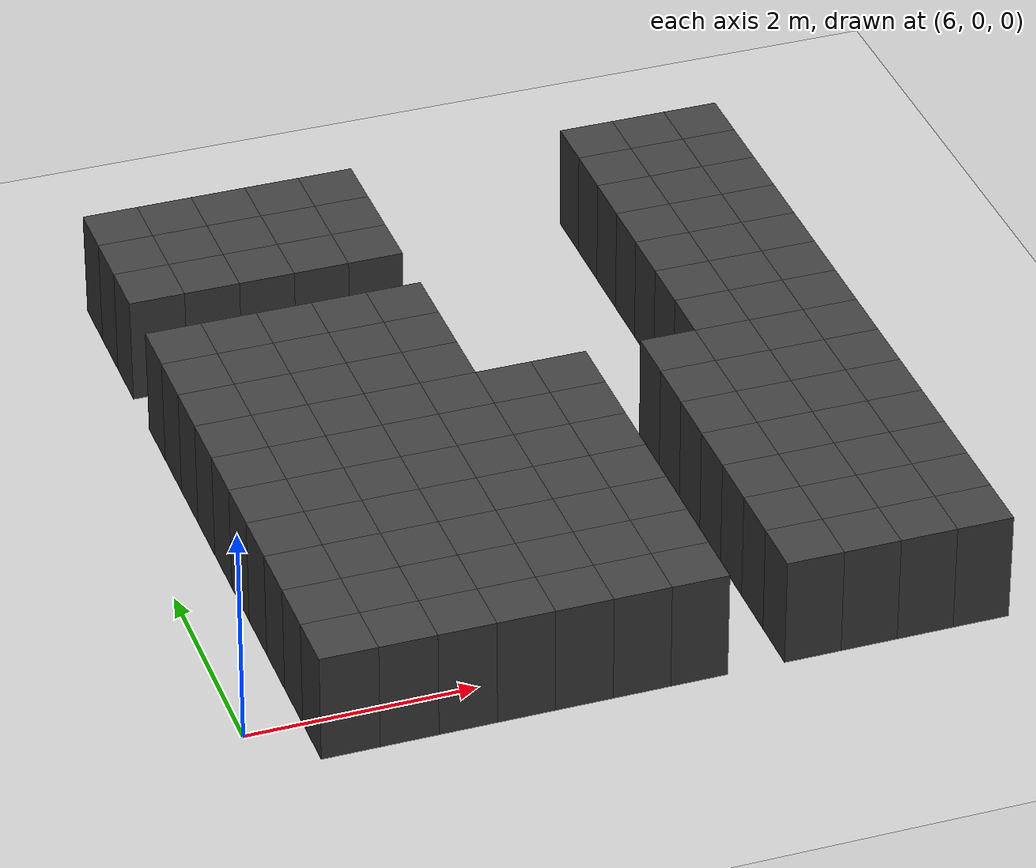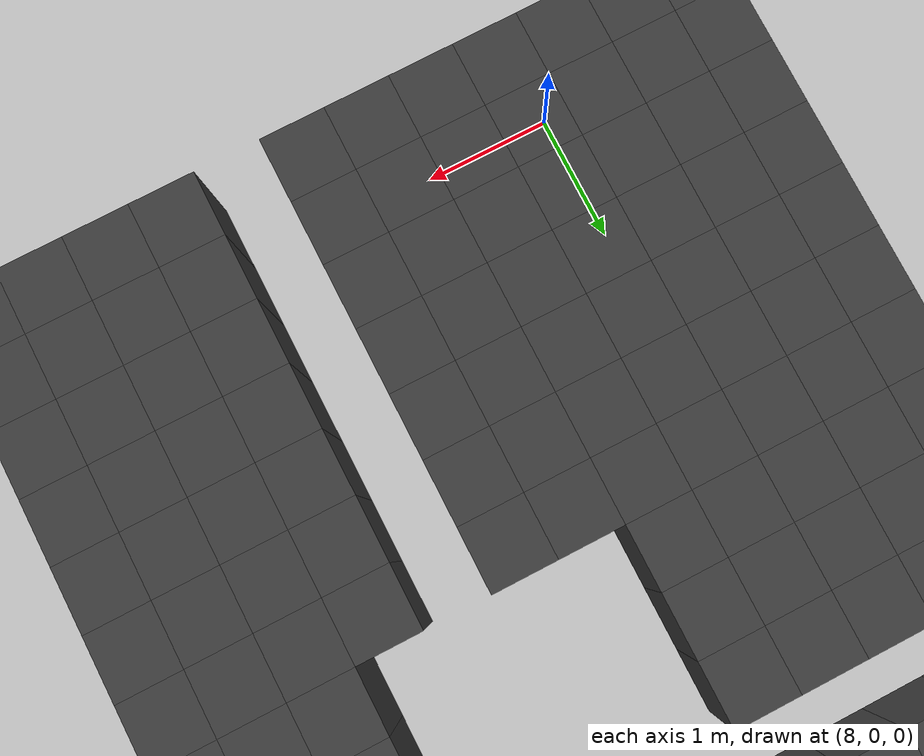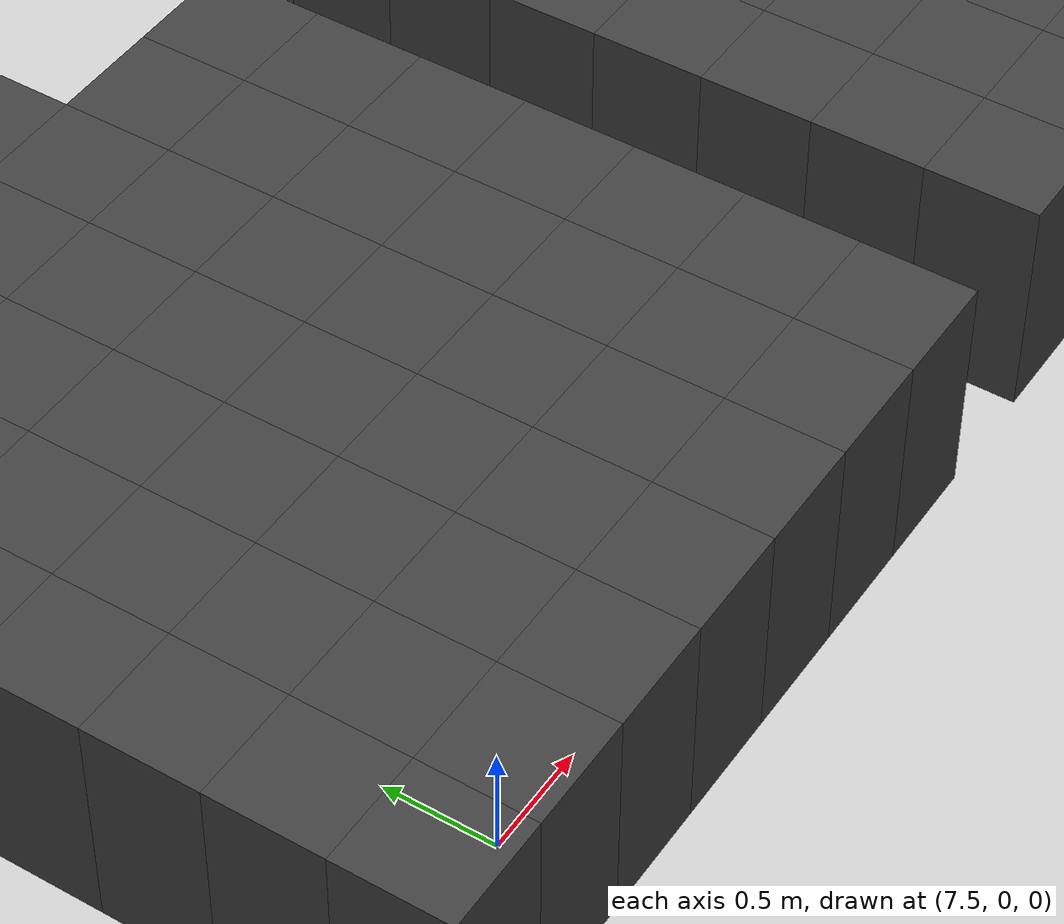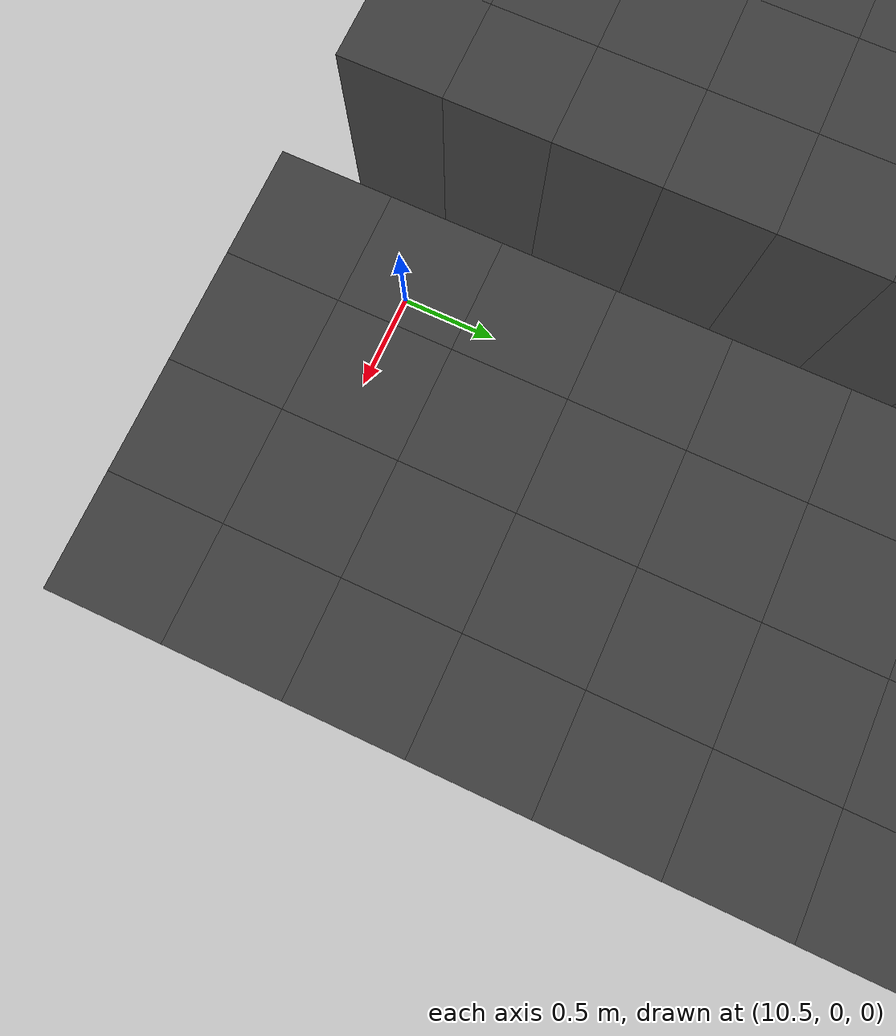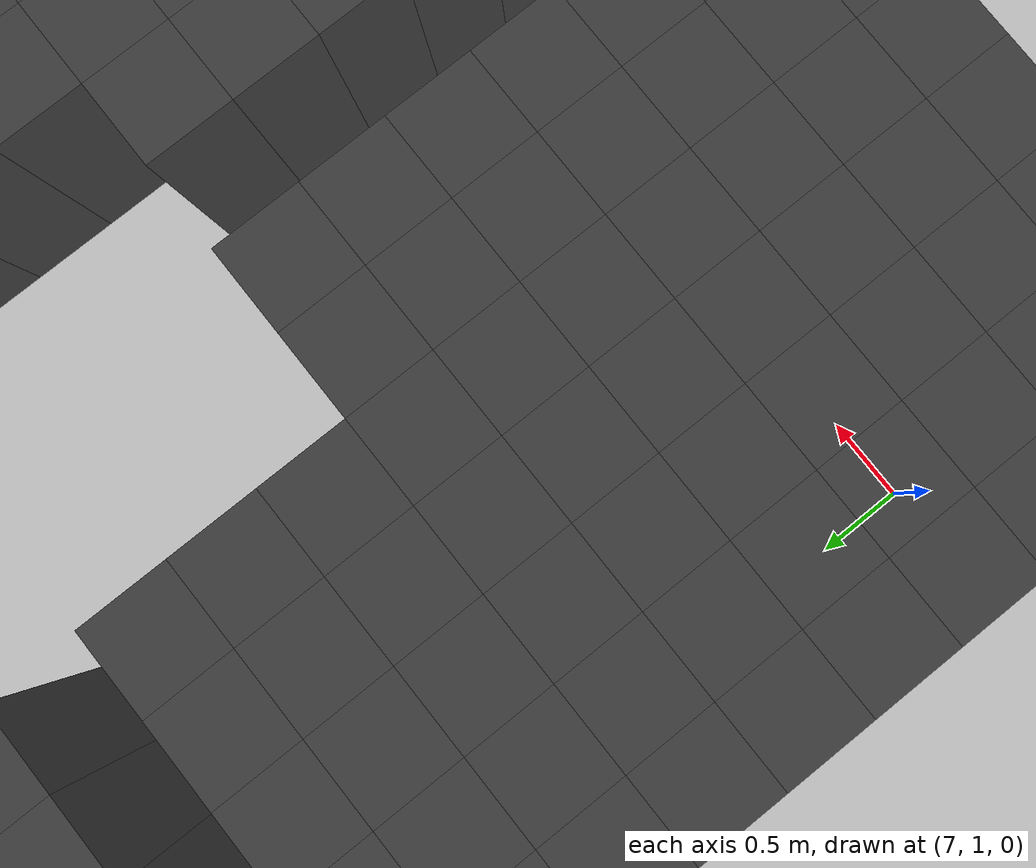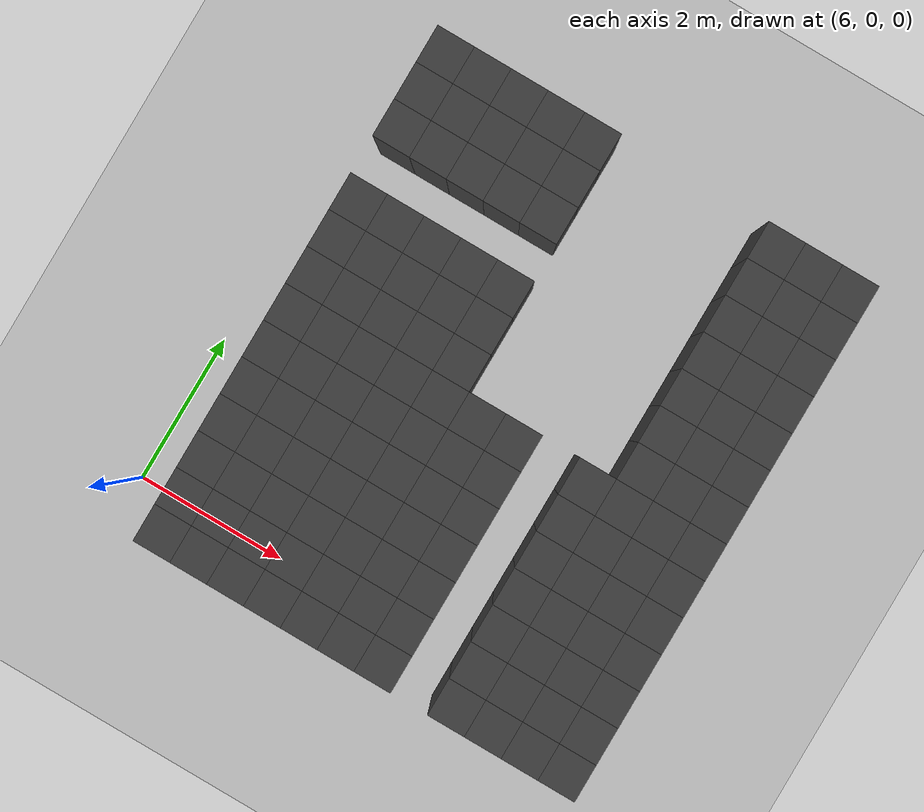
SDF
<sdf version="1.7">
 <world name="map_12356">
  <model name="ground_plane">
   <static>true</static>
   <link name="link">
    <collision name="collision">
     <geometry><plane><normal>0 0 1</normal><size>200 200</size></plane></geometry>
    </collision>
    <visual name="visual">
     <geometry><plane><normal>0 0 1</normal><size>200 200</size></plane></geometry>
     <material><ambient>0.8 0.8 0.8 1</ambient><diffuse>0.8 0.8 0.8 1</diffuse></material>
    </visual>
   </link>
  </model>
  <model name="maze_environment">
   <static>true</static>
   <link name="wall_462">
    <pose>6.750 6.250 0.500 0 0 0</pose>
    <collision name="col"><geometry><box><size>0.5 0.5 1.0</size></box></geometry></collision>
    <visual name="vis">
     <geometry><box><size>0.5 0.5 1.0</size></box></geometry>
     <material><ambient>0.15 0.15 0.15 1</ambient><diffuse>0.25 0.25 0.25 1</diffuse></material>
    </visual>
   </link>
   <link name="wall_463">
    <pose>7.250 6.250 0.500 0 0 0</pose>
    <collision name="col"><geometry><box><size>0.5 0.5 1.0</size></box></geometry></collision>
    <visual name="vis">
     <geometry><box><size>0.5 0.5 1.0</size></box></geometry>
     <material><ambient>0.15 0.15 0.15 1</ambient><diffuse>0.25 0.25 0.25 1</diffuse></material>
    </visual>
   </link>
   <link name="wall_464">
    <pose>7.750 6.250 0.500 0 0 0</pose>
    <collision name="col"><geometry><box><size>0.5 0.5 1.0</size></box></geometry></collision>
    <visual name="vis">
     <geometry><box><size>0.5 0.5 1.0</size></box></geometry>
     <material><ambient>0.15 0.15 0.15 1</ambient><diffuse>0.25 0.25 0.25 1</diffuse></material>
    </visual>
   </link>
   <link name="wall_465">
    <pose>8.250 6.250 0.500 0 0 0</pose>
    <collision name="col"><geometry><box><size>0.5 0.5 1.0</size></box></geometry></collision>
    <visual name="vis">
     <geometry><box><size>0.5 0.5 1.0</size></box></geometry>
     <material><ambient>0.15 0.15 0.15 1</ambient><diffuse>0.25 0.25 0.25 1</diffuse></material>
    </visual>
   </link>
   <link name="wall_466">
    <pose>8.750 6.250 0.500 0 0 0</pose>
    <collision name="col"><geometry><box><size>0.5 0.5 1.0</size></box></geometry></collision>
    <visual name="vis">
     <geometry><box><size>0.5 0.5 1.0</size></box></geometry>
     <material><ambient>0.15 0.15 0.15 1</ambient><diffuse>0.25 0.25 0.25 1</diffuse></material>
    </visual>
   </link>
   <link name="wall_467">
    <pose>11.250 6.250 0.500 0 0 0</pose>
    <collision name="col"><geometry><box><size>0.5 0.5 1.0</size></box></geometry></collision>
    <visual name="vis">
     <geometry><box><size>0.5 0.5 1.0</size></box></geometry>
     <material><ambient>0.15 0.15 0.15 1</ambient><diffuse>0.25 0.25 0.25 1</diffuse></material>
    </visual>
   </link>
   <link name="wall_468">
    <pose>11.750 6.250 0.500 0 0 0</pose>
    <collision name="col"><geometry><box><size>0.5 0.5 1.0</size></box></geometry></collision>
    <visual name="vis">
     <geometry><box><size>0.5 0.5 1.0</size></box></geometry>
     <material><ambient>0.15 0.15 0.15 1</ambient><diffuse>0.25 0.25 0.25 1</diffuse></material>
    </visual>
   </link>
   <link name="wall_469">
    <pose>12.250 6.250 0.500 0 0 0</pose>
    <collision name="col"><geometry><box><size>0.5 0.5 1.0</size></box></geometry></collision>
    <visual name="vis">
     <geometry><box><size>0.5 0.5 1.0</size></box></geometry>
     <material><ambient>0.15 0.15 0.15 1</ambient><diffuse>0.25 0.25 0.25 1</diffuse></material>
    </visual>
   </link>
   <link name="wall_506">
    <pose>6.750 5.750 0.500 0 0 0</pose>
    <collision name="col"><geometry><box><size>0.5 0.5 1.0</size></box></geometry></collision>
    <visual name="vis">
     <geometry><box><size>0.5 0.5 1.0</size></box></geometry>
     <material><ambient>0.15 0.15 0.15 1</ambient><diffuse>0.25 0.25 0.25 1</diffuse></material>
    </visual>
   </link>
   <link name="wall_507">
    <pose>7.250 5.750 0.500 0 0 0</pose>
    <collision name="col"><geometry><box><size>0.5 0.5 1.0</size></box></geometry></collision>
    <visual name="vis">
     <geometry><box><size>0.5 0.5 1.0</size></box></geometry>
     <material><ambient>0.15 0.15 0.15 1</ambient><diffuse>0.25 0.25 0.25 1</diffuse></material>
    </visual>
   </link>
   <link name="wall_508">
    <pose>7.750 5.750 0.500 0 0 0</pose>
    <collision name="col"><geometry><box><size>0.5 0.5 1.0</size></box></geometry></collision>
    <visual name="vis">
     <geometry><box><size>0.5 0.5 1.0</size></box></geometry>
     <material><ambient>0.15 0.15 0.15 1</ambient><diffuse>0.25 0.25 0.25 1</diffuse></material>
    </visual>
   </link>
   <link name="wall_509">
    <pose>8.250 5.750 0.500 0 0 0</pose>
    <collision name="col"><geometry><box><size>0.5 0.5 1.0</size></box></geometry></collision>
    <visual name="vis">
     <geometry><box><size>0.5 0.5 1.0</size></box></geometry>
     <material><ambient>0.15 0.15 0.15 1</ambient><diffuse>0.25 0.25 0.25 1</diffuse></material>
    </visual>
   </link>
   <link name="wall_510">
    <pose>8.750 5.750 0.500 0 0 0</pose>
    <collision name="col"><geometry><box><size>0.5 0.5 1.0</size></box></geometry></collision>
    <visual name="vis">
     <geometry><box><size>0.5 0.5 1.0</size></box></geometry>
     <material><ambient>0.15 0.15 0.15 1</ambient><diffuse>0.25 0.25 0.25 1</diffuse></material>
    </visual>
   </link>
   <link name="wall_511">
    <pose>11.250 5.750 0.500 0 0 0</pose>
    <collision name="col"><geometry><box><size>0.5 0.5 1.0</size></box></geometry></collision>
    <visual name="vis">
     <geometry><box><size>0.5 0.5 1.0</size></box></geometry>
     <material><ambient>0.15 0.15 0.15 1</ambient><diffuse>0.25 0.25 0.25 1</diffuse></material>
    </visual>
   </link>
   <link name="wall_512">
    <pose>11.750 5.750 0.500 0 0 0</pose>
    <collision name="col"><geometry><box><size>0.5 0.5 1.0</size></box></geometry></collision>
    <visual name="vis">
     <geometry><box><size>0.5 0.5 1.0</size></box></geometry>
     <material><ambient>0.15 0.15 0.15 1</ambient><diffuse>0.25 0.25 0.25 1</diffuse></material>
    </visual>
   </link>
   <link name="wall_513">
    <pose>12.250 5.750 0.500 0 0 0</pose>
    <collision name="col"><geometry><box><size>0.5 0.5 1.0</size></box></geometry></collision>
    <visual name="vis">
     <geometry><box><size>0.5 0.5 1.0</size></box></geometry>
     <material><ambient>0.15 0.15 0.15 1</ambient><diffuse>0.25 0.25 0.25 1</diffuse></material>
    </visual>
   </link>
   <link name="wall_550">
    <pose>6.750 5.250 0.500 0 0 0</pose>
    <collision name="col"><geometry><box><size>0.5 0.5 1.0</size></box></geometry></collision>
    <visual name="vis">
     <geometry><box><size>0.5 0.5 1.0</size></box></geometry>
     <material><ambient>0.15 0.15 0.15 1</ambient><diffuse>0.25 0.25 0.25 1</diffuse></material>
    </visual>
   </link>
   <link name="wall_551">
    <pose>7.250 5.250 0.500 0 0 0</pose>
    <collision name="col"><geometry><box><size>0.5 0.5 1.0</size></box></geometry></collision>
    <visual name="vis">
     <geometry><box><size>0.5 0.5 1.0</size></box></geometry>
     <material><ambient>0.15 0.15 0.15 1</ambient><diffuse>0.25 0.25 0.25 1</diffuse></material>
    </visual>
   </link>
   <link name="wall_552">
    <pose>7.750 5.250 0.500 0 0 0</pose>
    <collision name="col"><geometry><box><size>0.5 0.5 1.0</size></box></geometry></collision>
    <visual name="vis">
     <geometry><box><size>0.5 0.5 1.0</size></box></geometry>
     <material><ambient>0.15 0.15 0.15 1</ambient><diffuse>0.25 0.25 0.25 1</diffuse></material>
    </visual>
   </link>
   <link name="wall_553">
    <pose>8.250 5.250 0.500 0 0 0</pose>
    <collision name="col"><geometry><box><size>0.5 0.5 1.0</size></box></geometry></collision>
    <visual name="vis">
     <geometry><box><size>0.5 0.5 1.0</size></box></geometry>
     <material><ambient>0.15 0.15 0.15 1</ambient><diffuse>0.25 0.25 0.25 1</diffuse></material>
    </visual>
   </link>
   <link name="wall_554">
    <pose>8.750 5.250 0.500 0 0 0</pose>
    <collision name="col"><geometry><box><size>0.5 0.5 1.0</size></box></geometry></collision>
    <visual name="vis">
     <geometry><box><size>0.5 0.5 1.0</size></box></geometry>
     <material><ambient>0.15 0.15 0.15 1</ambient><diffuse>0.25 0.25 0.25 1</diffuse></material>
    </visual>
   </link>
   <link name="wall_555">
    <pose>11.250 5.250 0.500 0 0 0</pose>
    <collision name="col"><geometry><box><size>0.5 0.5 1.0</size></box></geometry></collision>
    <visual name="vis">
     <geometry><box><size>0.5 0.5 1.0</size></box></geometry>
     <material><ambient>0.15 0.15 0.15 1</ambient><diffuse>0.25 0.25 0.25 1</diffuse></material>
    </visual>
   </link>
   <link name="wall_556">
    <pose>11.750 5.250 0.500 0 0 0</pose>
    <collision name="col"><geometry><box><size>0.5 0.5 1.0</size></box></geometry></collision>
    <visual name="vis">
     <geometry><box><size>0.5 0.5 1.0</size></box></geometry>
     <material><ambient>0.15 0.15 0.15 1</ambient><diffuse>0.25 0.25 0.25 1</diffuse></material>
    </visual>
   </link>
   <link name="wall_557">
    <pose>12.250 5.250 0.500 0 0 0</pose>
    <collision name="col"><geometry><box><size>0.5 0.5 1.0</size></box></geometry></collision>
    <visual name="vis">
     <geometry><box><size>0.5 0.5 1.0</size></box></geometry>
     <material><ambient>0.15 0.15 0.15 1</ambient><diffuse>0.25 0.25 0.25 1</diffuse></material>
    </visual>
   </link>
   <link name="wall_581">
    <pose>11.250 4.750 0.500 0 0 0</pose>
    <collision name="col"><geometry><box><size>0.5 0.5 1.0</size></box></geometry></collision>
    <visual name="vis">
     <geometry><box><size>0.5 0.5 1.0</size></box></geometry>
     <material><ambient>0.15 0.15 0.15 1</ambient><diffuse>0.25 0.25 0.25 1</diffuse></material>
    </visual>
   </link>
   <link name="wall_582">
    <pose>11.750 4.750 0.500 0 0 0</pose>
    <collision name="col"><geometry><box><size>0.5 0.5 1.0</size></box></geometry></collision>
    <visual name="vis">
     <geometry><box><size>0.5 0.5 1.0</size></box></geometry>
     <material><ambient>0.15 0.15 0.15 1</ambient><diffuse>0.25 0.25 0.25 1</diffuse></material>
    </visual>
   </link>
   <link name="wall_583">
    <pose>12.250 4.750 0.500 0 0 0</pose>
    <collision name="col"><geometry><box><size>0.5 0.5 1.0</size></box></geometry></collision>
    <visual name="vis">
     <geometry><box><size>0.5 0.5 1.0</size></box></geometry>
     <material><ambient>0.15 0.15 0.15 1</ambient><diffuse>0.25 0.25 0.25 1</diffuse></material>
    </visual>
   </link>
   <link name="wall_615">
    <pose>6.750 4.250 0.500 0 0 0</pose>
    <collision name="col"><geometry><box><size>0.5 0.5 1.0</size></box></geometry></collision>
    <visual name="vis">
     <geometry><box><size>0.5 0.5 1.0</size></box></geometry>
     <material><ambient>0.15 0.15 0.15 1</ambient><diffuse>0.25 0.25 0.25 1</diffuse></material>
    </visual>
   </link>
   <link name="wall_616">
    <pose>7.250 4.250 0.500 0 0 0</pose>
    <collision name="col"><geometry><box><size>0.5 0.5 1.0</size></box></geometry></collision>
    <visual name="vis">
     <geometry><box><size>0.5 0.5 1.0</size></box></geometry>
     <material><ambient>0.15 0.15 0.15 1</ambient><diffuse>0.25 0.25 0.25 1</diffuse></material>
    </visual>
   </link>
   <link name="wall_617">
    <pose>7.750 4.250 0.500 0 0 0</pose>
    <collision name="col"><geometry><box><size>0.5 0.5 1.0</size></box></geometry></collision>
    <visual name="vis">
     <geometry><box><size>0.5 0.5 1.0</size></box></geometry>
     <material><ambient>0.15 0.15 0.15 1</ambient><diffuse>0.25 0.25 0.25 1</diffuse></material>
    </visual>
   </link>
   <link name="wall_618">
    <pose>8.250 4.250 0.500 0 0 0</pose>
    <collision name="col"><geometry><box><size>0.5 0.5 1.0</size></box></geometry></collision>
    <visual name="vis">
     <geometry><box><size>0.5 0.5 1.0</size></box></geometry>
     <material><ambient>0.15 0.15 0.15 1</ambient><diffuse>0.25 0.25 0.25 1</diffuse></material>
    </visual>
   </link>
   <link name="wall_619">
    <pose>8.750 4.250 0.500 0 0 0</pose>
    <collision name="col"><geometry><box><size>0.5 0.5 1.0</size></box></geometry></collision>
    <visual name="vis">
     <geometry><box><size>0.5 0.5 1.0</size></box></geometry>
     <material><ambient>0.15 0.15 0.15 1</ambient><diffuse>0.25 0.25 0.25 1</diffuse></material>
    </visual>
   </link>
   <link name="wall_620">
    <pose>11.250 4.250 0.500 0 0 0</pose>
    <collision name="col"><geometry><box><size>0.5 0.5 1.0</size></box></geometry></collision>
    <visual name="vis">
     <geometry><box><size>0.5 0.5 1.0</size></box></geometry>
     <material><ambient>0.15 0.15 0.15 1</ambient><diffuse>0.25 0.25 0.25 1</diffuse></material>
    </visual>
   </link>
   <link name="wall_621">
    <pose>11.750 4.250 0.500 0 0 0</pose>
    <collision name="col"><geometry><box><size>0.5 0.5 1.0</size></box></geometry></collision>
    <visual name="vis">
     <geometry><box><size>0.5 0.5 1.0</size></box></geometry>
     <material><ambient>0.15 0.15 0.15 1</ambient><diffuse>0.25 0.25 0.25 1</diffuse></material>
    </visual>
   </link>
   <link name="wall_622">
    <pose>12.250 4.250 0.500 0 0 0</pose>
    <collision name="col"><geometry><box><size>0.5 0.5 1.0</size></box></geometry></collision>
    <visual name="vis">
     <geometry><box><size>0.5 0.5 1.0</size></box></geometry>
     <material><ambient>0.15 0.15 0.15 1</ambient><diffuse>0.25 0.25 0.25 1</diffuse></material>
    </visual>
   </link>
   <link name="wall_654">
    <pose>6.750 3.750 0.500 0 0 0</pose>
    <collision name="col"><geometry><box><size>0.5 0.5 1.0</size></box></geometry></collision>
    <visual name="vis">
     <geometry><box><size>0.5 0.5 1.0</size></box></geometry>
     <material><ambient>0.15 0.15 0.15 1</ambient><diffuse>0.25 0.25 0.25 1</diffuse></material>
    </visual>
   </link>
   <link name="wall_655">
    <pose>7.250 3.750 0.500 0 0 0</pose>
    <collision name="col"><geometry><box><size>0.5 0.5 1.0</size></box></geometry></collision>
    <visual name="vis">
     <geometry><box><size>0.5 0.5 1.0</size></box></geometry>
     <material><ambient>0.15 0.15 0.15 1</ambient><diffuse>0.25 0.25 0.25 1</diffuse></material>
    </visual>
   </link>
   <link name="wall_656">
    <pose>7.750 3.750 0.500 0 0 0</pose>
    <collision name="col"><geometry><box><size>0.5 0.5 1.0</size></box></geometry></collision>
    <visual name="vis">
     <geometry><box><size>0.5 0.5 1.0</size></box></geometry>
     <material><ambient>0.15 0.15 0.15 1</ambient><diffuse>0.25 0.25 0.25 1</diffuse></material>
    </visual>
   </link>
   <link name="wall_657">
    <pose>8.250 3.750 0.500 0 0 0</pose>
    <collision name="col"><geometry><box><size>0.5 0.5 1.0</size></box></geometry></collision>
    <visual name="vis">
     <geometry><box><size>0.5 0.5 1.0</size></box></geometry>
     <material><ambient>0.15 0.15 0.15 1</ambient><diffuse>0.25 0.25 0.25 1</diffuse></material>
    </visual>
   </link>
   <link name="wall_658">
    <pose>8.750 3.750 0.500 0 0 0</pose>
    <collision name="col"><geometry><box><size>0.5 0.5 1.0</size></box></geometry></collision>
    <visual name="vis">
     <geometry><box><size>0.5 0.5 1.0</size></box></geometry>
     <material><ambient>0.15 0.15 0.15 1</ambient><diffuse>0.25 0.25 0.25 1</diffuse></material>
    </visual>
   </link>
   <link name="wall_659">
    <pose>11.250 3.750 0.500 0 0 0</pose>
    <collision name="col"><geometry><box><size>0.5 0.5 1.0</size></box></geometry></collision>
    <visual name="vis">
     <geometry><box><size>0.5 0.5 1.0</size></box></geometry>
     <material><ambient>0.15 0.15 0.15 1</ambient><diffuse>0.25 0.25 0.25 1</diffuse></material>
    </visual>
   </link>
   <link name="wall_660">
    <pose>11.750 3.750 0.500 0 0 0</pose>
    <collision name="col"><geometry><box><size>0.5 0.5 1.0</size></box></geometry></collision>
    <visual name="vis">
     <geometry><box><size>0.5 0.5 1.0</size></box></geometry>
     <material><ambient>0.15 0.15 0.15 1</ambient><diffuse>0.25 0.25 0.25 1</diffuse></material>
    </visual>
   </link>
   <link name="wall_661">
    <pose>12.250 3.750 0.500 0 0 0</pose>
    <collision name="col"><geometry><box><size>0.5 0.5 1.0</size></box></geometry></collision>
    <visual name="vis">
     <geometry><box><size>0.5 0.5 1.0</size></box></geometry>
     <material><ambient>0.15 0.15 0.15 1</ambient><diffuse>0.25 0.25 0.25 1</diffuse></material>
    </visual>
   </link>
   <link name="wall_693">
    <pose>6.750 3.250 0.500 0 0 0</pose>
    <collision name="col"><geometry><box><size>0.5 0.5 1.0</size></box></geometry></collision>
    <visual name="vis">
     <geometry><box><size>0.5 0.5 1.0</size></box></geometry>
     <material><ambient>0.15 0.15 0.15 1</ambient><diffuse>0.25 0.25 0.25 1</diffuse></material>
    </visual>
   </link>
   <link name="wall_694">
    <pose>7.250 3.250 0.500 0 0 0</pose>
    <collision name="col"><geometry><box><size>0.5 0.5 1.0</size></box></geometry></collision>
    <visual name="vis">
     <geometry><box><size>0.5 0.5 1.0</size></box></geometry>
     <material><ambient>0.15 0.15 0.15 1</ambient><diffuse>0.25 0.25 0.25 1</diffuse></material>
    </visual>
   </link>
   <link name="wall_695">
    <pose>7.750 3.250 0.500 0 0 0</pose>
    <collision name="col"><geometry><box><size>0.5 0.5 1.0</size></box></geometry></collision>
    <visual name="vis">
     <geometry><box><size>0.5 0.5 1.0</size></box></geometry>
     <material><ambient>0.15 0.15 0.15 1</ambient><diffuse>0.25 0.25 0.25 1</diffuse></material>
    </visual>
   </link>
   <link name="wall_696">
    <pose>8.250 3.250 0.500 0 0 0</pose>
    <collision name="col"><geometry><box><size>0.5 0.5 1.0</size></box></geometry></collision>
    <visual name="vis">
     <geometry><box><size>0.5 0.5 1.0</size></box></geometry>
     <material><ambient>0.15 0.15 0.15 1</ambient><diffuse>0.25 0.25 0.25 1</diffuse></material>
    </visual>
   </link>
   <link name="wall_697">
    <pose>8.750 3.250 0.500 0 0 0</pose>
    <collision name="col"><geometry><box><size>0.5 0.5 1.0</size></box></geometry></collision>
    <visual name="vis">
     <geometry><box><size>0.5 0.5 1.0</size></box></geometry>
     <material><ambient>0.15 0.15 0.15 1</ambient><diffuse>0.25 0.25 0.25 1</diffuse></material>
    </visual>
   </link>
   <link name="wall_698">
    <pose>11.250 3.250 0.500 0 0 0</pose>
    <collision name="col"><geometry><box><size>0.5 0.5 1.0</size></box></geometry></collision>
    <visual name="vis">
     <geometry><box><size>0.5 0.5 1.0</size></box></geometry>
     <material><ambient>0.15 0.15 0.15 1</ambient><diffuse>0.25 0.25 0.25 1</diffuse></material>
    </visual>
   </link>
   <link name="wall_699">
    <pose>11.750 3.250 0.500 0 0 0</pose>
    <collision name="col"><geometry><box><size>0.5 0.5 1.0</size></box></geometry></collision>
    <visual name="vis">
     <geometry><box><size>0.5 0.5 1.0</size></box></geometry>
     <material><ambient>0.15 0.15 0.15 1</ambient><diffuse>0.25 0.25 0.25 1</diffuse></material>
    </visual>
   </link>
   <link name="wall_700">
    <pose>12.250 3.250 0.500 0 0 0</pose>
    <collision name="col"><geometry><box><size>0.5 0.5 1.0</size></box></geometry></collision>
    <visual name="vis">
     <geometry><box><size>0.5 0.5 1.0</size></box></geometry>
     <material><ambient>0.15 0.15 0.15 1</ambient><diffuse>0.25 0.25 0.25 1</diffuse></material>
    </visual>
   </link>
   <link name="wall_732">
    <pose>6.750 2.750 0.500 0 0 0</pose>
    <collision name="col"><geometry><box><size>0.5 0.5 1.0</size></box></geometry></collision>
    <visual name="vis">
     <geometry><box><size>0.5 0.5 1.0</size></box></geometry>
     <material><ambient>0.15 0.15 0.15 1</ambient><diffuse>0.25 0.25 0.25 1</diffuse></material>
    </visual>
   </link>
   <link name="wall_733">
    <pose>7.250 2.750 0.500 0 0 0</pose>
    <collision name="col"><geometry><box><size>0.5 0.5 1.0</size></box></geometry></collision>
    <visual name="vis">
     <geometry><box><size>0.5 0.5 1.0</size></box></geometry>
     <material><ambient>0.15 0.15 0.15 1</ambient><diffuse>0.25 0.25 0.25 1</diffuse></material>
    </visual>
   </link>
   <link name="wall_734">
    <pose>7.750 2.750 0.500 0 0 0</pose>
    <collision name="col"><geometry><box><size>0.5 0.5 1.0</size></box></geometry></collision>
    <visual name="vis">
     <geometry><box><size>0.5 0.5 1.0</size></box></geometry>
     <material><ambient>0.15 0.15 0.15 1</ambient><diffuse>0.25 0.25 0.25 1</diffuse></material>
    </visual>
   </link>
   <link name="wall_735">
    <pose>8.250 2.750 0.500 0 0 0</pose>
    <collision name="col"><geometry><box><size>0.5 0.5 1.0</size></box></geometry></collision>
    <visual name="vis">
     <geometry><box><size>0.5 0.5 1.0</size></box></geometry>
     <material><ambient>0.15 0.15 0.15 1</ambient><diffuse>0.25 0.25 0.25 1</diffuse></material>
    </visual>
   </link>
   <link name="wall_736">
    <pose>8.750 2.750 0.500 0 0 0</pose>
    <collision name="col"><geometry><box><size>0.5 0.5 1.0</size></box></geometry></collision>
    <visual name="vis">
     <geometry><box><size>0.5 0.5 1.0</size></box></geometry>
     <material><ambient>0.15 0.15 0.15 1</ambient><diffuse>0.25 0.25 0.25 1</diffuse></material>
    </visual>
   </link>
   <link name="wall_737">
    <pose>9.250 2.750 0.500 0 0 0</pose>
    <collision name="col"><geometry><box><size>0.5 0.5 1.0</size></box></geometry></collision>
    <visual name="vis">
     <geometry><box><size>0.5 0.5 1.0</size></box></geometry>
     <material><ambient>0.15 0.15 0.15 1</ambient><diffuse>0.25 0.25 0.25 1</diffuse></material>
    </visual>
   </link>
   <link name="wall_738">
    <pose>9.750 2.750 0.500 0 0 0</pose>
    <collision name="col"><geometry><box><size>0.5 0.5 1.0</size></box></geometry></collision>
    <visual name="vis">
     <geometry><box><size>0.5 0.5 1.0</size></box></geometry>
     <material><ambient>0.15 0.15 0.15 1</ambient><diffuse>0.25 0.25 0.25 1</diffuse></material>
    </visual>
   </link>
   <link name="wall_739">
    <pose>10.750 2.750 0.500 0 0 0</pose>
    <collision name="col"><geometry><box><size>0.5 0.5 1.0</size></box></geometry></collision>
    <visual name="vis">
     <geometry><box><size>0.5 0.5 1.0</size></box></geometry>
     <material><ambient>0.15 0.15 0.15 1</ambient><diffuse>0.25 0.25 0.25 1</diffuse></material>
    </visual>
   </link>
   <link name="wall_740">
    <pose>11.250 2.750 0.500 0 0 0</pose>
    <collision name="col"><geometry><box><size>0.5 0.5 1.0</size></box></geometry></collision>
    <visual name="vis">
     <geometry><box><size>0.5 0.5 1.0</size></box></geometry>
     <material><ambient>0.15 0.15 0.15 1</ambient><diffuse>0.25 0.25 0.25 1</diffuse></material>
    </visual>
   </link>
   <link name="wall_741">
    <pose>11.750 2.750 0.500 0 0 0</pose>
    <collision name="col"><geometry><box><size>0.5 0.5 1.0</size></box></geometry></collision>
    <visual name="vis">
     <geometry><box><size>0.5 0.5 1.0</size></box></geometry>
     <material><ambient>0.15 0.15 0.15 1</ambient><diffuse>0.25 0.25 0.25 1</diffuse></material>
    </visual>
   </link>
   <link name="wall_742">
    <pose>12.250 2.750 0.500 0 0 0</pose>
    <collision name="col"><geometry><box><size>0.5 0.5 1.0</size></box></geometry></collision>
    <visual name="vis">
     <geometry><box><size>0.5 0.5 1.0</size></box></geometry>
     <material><ambient>0.15 0.15 0.15 1</ambient><diffuse>0.25 0.25 0.25 1</diffuse></material>
    </visual>
   </link>
   <link name="wall_774">
    <pose>6.750 2.250 0.500 0 0 0</pose>
    <collision name="col"><geometry><box><size>0.5 0.5 1.0</size></box></geometry></collision>
    <visual name="vis">
     <geometry><box><size>0.5 0.5 1.0</size></box></geometry>
     <material><ambient>0.15 0.15 0.15 1</ambient><diffuse>0.25 0.25 0.25 1</diffuse></material>
    </visual>
   </link>
   <link name="wall_775">
    <pose>7.250 2.250 0.500 0 0 0</pose>
    <collision name="col"><geometry><box><size>0.5 0.5 1.0</size></box></geometry></collision>
    <visual name="vis">
     <geometry><box><size>0.5 0.5 1.0</size></box></geometry>
     <material><ambient>0.15 0.15 0.15 1</ambient><diffuse>0.25 0.25 0.25 1</diffuse></material>
    </visual>
   </link>
   <link name="wall_776">
    <pose>7.750 2.250 0.500 0 0 0</pose>
    <collision name="col"><geometry><box><size>0.5 0.5 1.0</size></box></geometry></collision>
    <visual name="vis">
     <geometry><box><size>0.5 0.5 1.0</size></box></geometry>
     <material><ambient>0.15 0.15 0.15 1</ambient><diffuse>0.25 0.25 0.25 1</diffuse></material>
    </visual>
   </link>
   <link name="wall_777">
    <pose>8.250 2.250 0.500 0 0 0</pose>
    <collision name="col"><geometry><box><size>0.5 0.5 1.0</size></box></geometry></collision>
    <visual name="vis">
     <geometry><box><size>0.5 0.5 1.0</size></box></geometry>
     <material><ambient>0.15 0.15 0.15 1</ambient><diffuse>0.25 0.25 0.25 1</diffuse></material>
    </visual>
   </link>
   <link name="wall_778">
    <pose>8.750 2.250 0.500 0 0 0</pose>
    <collision name="col"><geometry><box><size>0.5 0.5 1.0</size></box></geometry></collision>
    <visual name="vis">
     <geometry><box><size>0.5 0.5 1.0</size></box></geometry>
     <material><ambient>0.15 0.15 0.15 1</ambient><diffuse>0.25 0.25 0.25 1</diffuse></material>
    </visual>
   </link>
   <link name="wall_779">
    <pose>9.250 2.250 0.500 0 0 0</pose>
    <collision name="col"><geometry><box><size>0.5 0.5 1.0</size></box></geometry></collision>
    <visual name="vis">
     <geometry><box><size>0.5 0.5 1.0</size></box></geometry>
     <material><ambient>0.15 0.15 0.15 1</ambient><diffuse>0.25 0.25 0.25 1</diffuse></material>
    </visual>
   </link>
   <link name="wall_780">
    <pose>9.750 2.250 0.500 0 0 0</pose>
    <collision name="col"><geometry><box><size>0.5 0.5 1.0</size></box></geometry></collision>
    <visual name="vis">
     <geometry><box><size>0.5 0.5 1.0</size></box></geometry>
     <material><ambient>0.15 0.15 0.15 1</ambient><diffuse>0.25 0.25 0.25 1</diffuse></material>
    </visual>
   </link>
   <link name="wall_781">
    <pose>10.750 2.250 0.500 0 0 0</pose>
    <collision name="col"><geometry><box><size>0.5 0.5 1.0</size></box></geometry></collision>
    <visual name="vis">
     <geometry><box><size>0.5 0.5 1.0</size></box></geometry>
     <material><ambient>0.15 0.15 0.15 1</ambient><diffuse>0.25 0.25 0.25 1</diffuse></material>
    </visual>
   </link>
   <link name="wall_782">
    <pose>11.250 2.250 0.500 0 0 0</pose>
    <collision name="col"><geometry><box><size>0.5 0.5 1.0</size></box></geometry></collision>
    <visual name="vis">
     <geometry><box><size>0.5 0.5 1.0</size></box></geometry>
     <material><ambient>0.15 0.15 0.15 1</ambient><diffuse>0.25 0.25 0.25 1</diffuse></material>
    </visual>
   </link>
   <link name="wall_783">
    <pose>11.750 2.250 0.500 0 0 0</pose>
    <collision name="col"><geometry><box><size>0.5 0.5 1.0</size></box></geometry></collision>
    <visual name="vis">
     <geometry><box><size>0.5 0.5 1.0</size></box></geometry>
     <material><ambient>0.15 0.15 0.15 1</ambient><diffuse>0.25 0.25 0.25 1</diffuse></material>
    </visual>
   </link>
   <link name="wall_784">
    <pose>12.250 2.250 0.500 0 0 0</pose>
    <collision name="col"><geometry><box><size>0.5 0.5 1.0</size></box></geometry></collision>
    <visual name="vis">
     <geometry><box><size>0.5 0.5 1.0</size></box></geometry>
     <material><ambient>0.15 0.15 0.15 1</ambient><diffuse>0.25 0.25 0.25 1</diffuse></material>
    </visual>
   </link>
   <link name="wall_816">
    <pose>6.750 1.750 0.500 0 0 0</pose>
    <collision name="col"><geometry><box><size>0.5 0.5 1.0</size></box></geometry></collision>
    <visual name="vis">
     <geometry><box><size>0.5 0.5 1.0</size></box></geometry>
     <material><ambient>0.15 0.15 0.15 1</ambient><diffuse>0.25 0.25 0.25 1</diffuse></material>
    </visual>
   </link>
   <link name="wall_817">
    <pose>7.250 1.750 0.500 0 0 0</pose>
    <collision name="col"><geometry><box><size>0.5 0.5 1.0</size></box></geometry></collision>
    <visual name="vis">
     <geometry><box><size>0.5 0.5 1.0</size></box></geometry>
     <material><ambient>0.15 0.15 0.15 1</ambient><diffuse>0.25 0.25 0.25 1</diffuse></material>
    </visual>
   </link>
   <link name="wall_818">
    <pose>7.750 1.750 0.500 0 0 0</pose>
    <collision name="col"><geometry><box><size>0.5 0.5 1.0</size></box></geometry></collision>
    <visual name="vis">
     <geometry><box><size>0.5 0.5 1.0</size></box></geometry>
     <material><ambient>0.15 0.15 0.15 1</ambient><diffuse>0.25 0.25 0.25 1</diffuse></material>
    </visual>
   </link>
   <link name="wall_819">
    <pose>8.250 1.750 0.500 0 0 0</pose>
    <collision name="col"><geometry><box><size>0.5 0.5 1.0</size></box></geometry></collision>
    <visual name="vis">
     <geometry><box><size>0.5 0.5 1.0</size></box></geometry>
     <material><ambient>0.15 0.15 0.15 1</ambient><diffuse>0.25 0.25 0.25 1</diffuse></material>
    </visual>
   </link>
   <link name="wall_820">
    <pose>8.750 1.750 0.500 0 0 0</pose>
    <collision name="col"><geometry><box><size>0.5 0.5 1.0</size></box></geometry></collision>
    <visual name="vis">
     <geometry><box><size>0.5 0.5 1.0</size></box></geometry>
     <material><ambient>0.15 0.15 0.15 1</ambient><diffuse>0.25 0.25 0.25 1</diffuse></material>
    </visual>
   </link>
   <link name="wall_821">
    <pose>9.250 1.750 0.500 0 0 0</pose>
    <collision name="col"><geometry><box><size>0.5 0.5 1.0</size></box></geometry></collision>
    <visual name="vis">
     <geometry><box><size>0.5 0.5 1.0</size></box></geometry>
     <material><ambient>0.15 0.15 0.15 1</ambient><diffuse>0.25 0.25 0.25 1</diffuse></material>
    </visual>
   </link>
   <link name="wall_822">
    <pose>9.750 1.750 0.500 0 0 0</pose>
    <collision name="col"><geometry><box><size>0.5 0.5 1.0</size></box></geometry></collision>
    <visual name="vis">
     <geometry><box><size>0.5 0.5 1.0</size></box></geometry>
     <material><ambient>0.15 0.15 0.15 1</ambient><diffuse>0.25 0.25 0.25 1</diffuse></material>
    </visual>
   </link>
   <link name="wall_823">
    <pose>10.750 1.750 0.500 0 0 0</pose>
    <collision name="col"><geometry><box><size>0.5 0.5 1.0</size></box></geometry></collision>
    <visual name="vis">
     <geometry><box><size>0.5 0.5 1.0</size></box></geometry>
     <material><ambient>0.15 0.15 0.15 1</ambient><diffuse>0.25 0.25 0.25 1</diffuse></material>
    </visual>
   </link>
   <link name="wall_824">
    <pose>11.250 1.750 0.500 0 0 0</pose>
    <collision name="col"><geometry><box><size>0.5 0.5 1.0</size></box></geometry></collision>
    <visual name="vis">
     <geometry><box><size>0.5 0.5 1.0</size></box></geometry>
     <material><ambient>0.15 0.15 0.15 1</ambient><diffuse>0.25 0.25 0.25 1</diffuse></material>
    </visual>
   </link>
   <link name="wall_825">
    <pose>11.750 1.750 0.500 0 0 0</pose>
    <collision name="col"><geometry><box><size>0.5 0.5 1.0</size></box></geometry></collision>
    <visual name="vis">
     <geometry><box><size>0.5 0.5 1.0</size></box></geometry>
     <material><ambient>0.15 0.15 0.15 1</ambient><diffuse>0.25 0.25 0.25 1</diffuse></material>
    </visual>
   </link>
   <link name="wall_826">
    <pose>12.250 1.750 0.500 0 0 0</pose>
    <collision name="col"><geometry><box><size>0.5 0.5 1.0</size></box></geometry></collision>
    <visual name="vis">
     <geometry><box><size>0.5 0.5 1.0</size></box></geometry>
     <material><ambient>0.15 0.15 0.15 1</ambient><diffuse>0.25 0.25 0.25 1</diffuse></material>
    </visual>
   </link>
   <link name="wall_858">
    <pose>6.750 1.250 0.500 0 0 0</pose>
    <collision name="col"><geometry><box><size>0.5 0.5 1.0</size></box></geometry></collision>
    <visual name="vis">
     <geometry><box><size>0.5 0.5 1.0</size></box></geometry>
     <material><ambient>0.15 0.15 0.15 1</ambient><diffuse>0.25 0.25 0.25 1</diffuse></material>
    </visual>
   </link>
   <link name="wall_859">
    <pose>7.250 1.250 0.500 0 0 0</pose>
    <collision name="col"><geometry><box><size>0.5 0.5 1.0</size></box></geometry></collision>
    <visual name="vis">
     <geometry><box><size>0.5 0.5 1.0</size></box></geometry>
     <material><ambient>0.15 0.15 0.15 1</ambient><diffuse>0.25 0.25 0.25 1</diffuse></material>
    </visual>
   </link>
   <link name="wall_860">
    <pose>7.750 1.250 0.500 0 0 0</pose>
    <collision name="col"><geometry><box><size>0.5 0.5 1.0</size></box></geometry></collision>
    <visual name="vis">
     <geometry><box><size>0.5 0.5 1.0</size></box></geometry>
     <material><ambient>0.15 0.15 0.15 1</ambient><diffuse>0.25 0.25 0.25 1</diffuse></material>
    </visual>
   </link>
   <link name="wall_861">
    <pose>8.250 1.250 0.500 0 0 0</pose>
    <collision name="col"><geometry><box><size>0.5 0.5 1.0</size></box></geometry></collision>
    <visual name="vis">
     <geometry><box><size>0.5 0.5 1.0</size></box></geometry>
     <material><ambient>0.15 0.15 0.15 1</ambient><diffuse>0.25 0.25 0.25 1</diffuse></material>
    </visual>
   </link>
   <link name="wall_862">
    <pose>8.750 1.250 0.500 0 0 0</pose>
    <collision name="col"><geometry><box><size>0.5 0.5 1.0</size></box></geometry></collision>
    <visual name="vis">
     <geometry><box><size>0.5 0.5 1.0</size></box></geometry>
     <material><ambient>0.15 0.15 0.15 1</ambient><diffuse>0.25 0.25 0.25 1</diffuse></material>
    </visual>
   </link>
   <link name="wall_863">
    <pose>9.250 1.250 0.500 0 0 0</pose>
    <collision name="col"><geometry><box><size>0.5 0.5 1.0</size></box></geometry></collision>
    <visual name="vis">
     <geometry><box><size>0.5 0.5 1.0</size></box></geometry>
     <material><ambient>0.15 0.15 0.15 1</ambient><diffuse>0.25 0.25 0.25 1</diffuse></material>
    </visual>
   </link>
   <link name="wall_864">
    <pose>9.750 1.250 0.500 0 0 0</pose>
    <collision name="col"><geometry><box><size>0.5 0.5 1.0</size></box></geometry></collision>
    <visual name="vis">
     <geometry><box><size>0.5 0.5 1.0</size></box></geometry>
     <material><ambient>0.15 0.15 0.15 1</ambient><diffuse>0.25 0.25 0.25 1</diffuse></material>
    </visual>
   </link>
   <link name="wall_865">
    <pose>10.750 1.250 0.500 0 0 0</pose>
    <collision name="col"><geometry><box><size>0.5 0.5 1.0</size></box></geometry></collision>
    <visual name="vis">
     <geometry><box><size>0.5 0.5 1.0</size></box></geometry>
     <material><ambient>0.15 0.15 0.15 1</ambient><diffuse>0.25 0.25 0.25 1</diffuse></material>
    </visual>
   </link>
   <link name="wall_866">
    <pose>11.250 1.250 0.500 0 0 0</pose>
    <collision name="col"><geometry><box><size>0.5 0.5 1.0</size></box></geometry></collision>
    <visual name="vis">
     <geometry><box><size>0.5 0.5 1.0</size></box></geometry>
     <material><ambient>0.15 0.15 0.15 1</ambient><diffuse>0.25 0.25 0.25 1</diffuse></material>
    </visual>
   </link>
   <link name="wall_867">
    <pose>11.750 1.250 0.500 0 0 0</pose>
    <collision name="col"><geometry><box><size>0.5 0.5 1.0</size></box></geometry></collision>
    <visual name="vis">
     <geometry><box><size>0.5 0.5 1.0</size></box></geometry>
     <material><ambient>0.15 0.15 0.15 1</ambient><diffuse>0.25 0.25 0.25 1</diffuse></material>
    </visual>
   </link>
   <link name="wall_868">
    <pose>12.250 1.250 0.500 0 0 0</pose>
    <collision name="col"><geometry><box><size>0.5 0.5 1.0</size></box></geometry></collision>
    <visual name="vis">
     <geometry><box><size>0.5 0.5 1.0</size></box></geometry>
     <material><ambient>0.15 0.15 0.15 1</ambient><diffuse>0.25 0.25 0.25 1</diffuse></material>
    </visual>
   </link>
   <link name="wall_906">
    <pose>6.750 0.750 0.500 0 0 0</pose>
    <collision name="col"><geometry><box><size>0.5 0.5 1.0</size></box></geometry></collision>
    <visual name="vis">
     <geometry><box><size>0.5 0.5 1.0</size></box></geometry>
     <material><ambient>0.15 0.15 0.15 1</ambient><diffuse>0.25 0.25 0.25 1</diffuse></material>
    </visual>
   </link>
   <link name="wall_907">
    <pose>7.250 0.750 0.500 0 0 0</pose>
    <collision name="col"><geometry><box><size>0.5 0.5 1.0</size></box></geometry></collision>
    <visual name="vis">
     <geometry><box><size>0.5 0.5 1.0</size></box></geometry>
     <material><ambient>0.15 0.15 0.15 1</ambient><diffuse>0.25 0.25 0.25 1</diffuse></material>
    </visual>
   </link>
   <link name="wall_908">
    <pose>7.750 0.750 0.500 0 0 0</pose>
    <collision name="col"><geometry><box><size>0.5 0.5 1.0</size></box></geometry></collision>
    <visual name="vis">
     <geometry><box><size>0.5 0.5 1.0</size></box></geometry>
     <material><ambient>0.15 0.15 0.15 1</ambient><diffuse>0.25 0.25 0.25 1</diffuse></material>
    </visual>
   </link>
   <link name="wall_909">
    <pose>8.250 0.750 0.500 0 0 0</pose>
    <collision name="col"><geometry><box><size>0.5 0.5 1.0</size></box></geometry></collision>
    <visual name="vis">
     <geometry><box><size>0.5 0.5 1.0</size></box></geometry>
     <material><ambient>0.15 0.15 0.15 1</ambient><diffuse>0.25 0.25 0.25 1</diffuse></material>
    </visual>
   </link>
   <link name="wall_910">
    <pose>8.750 0.750 0.500 0 0 0</pose>
    <collision name="col"><geometry><box><size>0.5 0.5 1.0</size></box></geometry></collision>
    <visual name="vis">
     <geometry><box><size>0.5 0.5 1.0</size></box></geometry>
     <material><ambient>0.15 0.15 0.15 1</ambient><diffuse>0.25 0.25 0.25 1</diffuse></material>
    </visual>
   </link>
   <link name="wall_911">
    <pose>9.250 0.750 0.500 0 0 0</pose>
    <collision name="col"><geometry><box><size>0.5 0.5 1.0</size></box></geometry></collision>
    <visual name="vis">
     <geometry><box><size>0.5 0.5 1.0</size></box></geometry>
     <material><ambient>0.15 0.15 0.15 1</ambient><diffuse>0.25 0.25 0.25 1</diffuse></material>
    </visual>
   </link>
   <link name="wall_912">
    <pose>9.750 0.750 0.500 0 0 0</pose>
    <collision name="col"><geometry><box><size>0.5 0.5 1.0</size></box></geometry></collision>
    <visual name="vis">
     <geometry><box><size>0.5 0.5 1.0</size></box></geometry>
     <material><ambient>0.15 0.15 0.15 1</ambient><diffuse>0.25 0.25 0.25 1</diffuse></material>
    </visual>
   </link>
   <link name="wall_913">
    <pose>10.750 0.750 0.500 0 0 0</pose>
    <collision name="col"><geometry><box><size>0.5 0.5 1.0</size></box></geometry></collision>
    <visual name="vis">
     <geometry><box><size>0.5 0.5 1.0</size></box></geometry>
     <material><ambient>0.15 0.15 0.15 1</ambient><diffuse>0.25 0.25 0.25 1</diffuse></material>
    </visual>
   </link>
   <link name="wall_914">
    <pose>11.250 0.750 0.500 0 0 0</pose>
    <collision name="col"><geometry><box><size>0.5 0.5 1.0</size></box></geometry></collision>
    <visual name="vis">
     <geometry><box><size>0.5 0.5 1.0</size></box></geometry>
     <material><ambient>0.15 0.15 0.15 1</ambient><diffuse>0.25 0.25 0.25 1</diffuse></material>
    </visual>
   </link>
   <link name="wall_915">
    <pose>11.750 0.750 0.500 0 0 0</pose>
    <collision name="col"><geometry><box><size>0.5 0.5 1.0</size></box></geometry></collision>
    <visual name="vis">
     <geometry><box><size>0.5 0.5 1.0</size></box></geometry>
     <material><ambient>0.15 0.15 0.15 1</ambient><diffuse>0.25 0.25 0.25 1</diffuse></material>
    </visual>
   </link>
   <link name="wall_916">
    <pose>12.250 0.750 0.500 0 0 0</pose>
    <collision name="col"><geometry><box><size>0.5 0.5 1.0</size></box></geometry></collision>
    <visual name="vis">
     <geometry><box><size>0.5 0.5 1.0</size></box></geometry>
     <material><ambient>0.15 0.15 0.15 1</ambient><diffuse>0.25 0.25 0.25 1</diffuse></material>
    </visual>
   </link>
   <link name="wall_954">
    <pose>6.750 0.250 0.500 0 0 0</pose>
    <collision name="col"><geometry><box><size>0.5 0.5 1.0</size></box></geometry></collision>
    <visual name="vis">
     <geometry><box><size>0.5 0.5 1.0</size></box></geometry>
     <material><ambient>0.15 0.15 0.15 1</ambient><diffuse>0.25 0.25 0.25 1</diffuse></material>
    </visual>
   </link>
   <link name="wall_955">
    <pose>7.250 0.250 0.500 0 0 0</pose>
    <collision name="col"><geometry><box><size>0.5 0.5 1.0</size></box></geometry></collision>
    <visual name="vis">
     <geometry><box><size>0.5 0.5 1.0</size></box></geometry>
     <material><ambient>0.15 0.15 0.15 1</ambient><diffuse>0.25 0.25 0.25 1</diffuse></material>
    </visual>
   </link>
   <link name="wall_956">
    <pose>7.750 0.250 0.500 0 0 0</pose>
    <collision name="col"><geometry><box><size>0.5 0.5 1.0</size></box></geometry></collision>
    <visual name="vis">
     <geometry><box><size>0.5 0.5 1.0</size></box></geometry>
     <material><ambient>0.15 0.15 0.15 1</ambient><diffuse>0.25 0.25 0.25 1</diffuse></material>
    </visual>
   </link>
   <link name="wall_957">
    <pose>8.250 0.250 0.500 0 0 0</pose>
    <collision name="col"><geometry><box><size>0.5 0.5 1.0</size></box></geometry></collision>
    <visual name="vis">
     <geometry><box><size>0.5 0.5 1.0</size></box></geometry>
     <material><ambient>0.15 0.15 0.15 1</ambient><diffuse>0.25 0.25 0.25 1</diffuse></material>
    </visual>
   </link>
   <link name="wall_958">
    <pose>8.750 0.250 0.500 0 0 0</pose>
    <collision name="col"><geometry><box><size>0.5 0.5 1.0</size></box></geometry></collision>
    <visual name="vis">
     <geometry><box><size>0.5 0.5 1.0</size></box></geometry>
     <material><ambient>0.15 0.15 0.15 1</ambient><diffuse>0.25 0.25 0.25 1</diffuse></material>
    </visual>
   </link>
   <link name="wall_959">
    <pose>9.250 0.250 0.500 0 0 0</pose>
    <collision name="col"><geometry><box><size>0.5 0.5 1.0</size></box></geometry></collision>
    <visual name="vis">
     <geometry><box><size>0.5 0.5 1.0</size></box></geometry>
     <material><ambient>0.15 0.15 0.15 1</ambient><diffuse>0.25 0.25 0.25 1</diffuse></material>
    </visual>
   </link>
   <link name="wall_960">
    <pose>9.750 0.250 0.500 0 0 0</pose>
    <collision name="col"><geometry><box><size>0.5 0.5 1.0</size></box></geometry></collision>
    <visual name="vis">
     <geometry><box><size>0.5 0.5 1.0</size></box></geometry>
     <material><ambient>0.15 0.15 0.15 1</ambient><diffuse>0.25 0.25 0.25 1</diffuse></material>
    </visual>
   </link>
   <link name="wall_961">
    <pose>10.750 0.250 0.500 0 0 0</pose>
    <collision name="col"><geometry><box><size>0.5 0.5 1.0</size></box></geometry></collision>
    <visual name="vis">
     <geometry><box><size>0.5 0.5 1.0</size></box></geometry>
     <material><ambient>0.15 0.15 0.15 1</ambient><diffuse>0.25 0.25 0.25 1</diffuse></material>
    </visual>
   </link>
   <link name="wall_962">
    <pose>11.250 0.250 0.500 0 0 0</pose>
    <collision name="col"><geometry><box><size>0.5 0.5 1.0</size></box></geometry></collision>
    <visual name="vis">
     <geometry><box><size>0.5 0.5 1.0</size></box></geometry>
     <material><ambient>0.15 0.15 0.15 1</ambient><diffuse>0.25 0.25 0.25 1</diffuse></material>
    </visual>
   </link>
   <link name="wall_963">
    <pose>11.750 0.250 0.500 0 0 0</pose>
    <collision name="col"><geometry><box><size>0.5 0.5 1.0</size></box></geometry></collision>
    <visual name="vis">
     <geometry><box><size>0.5 0.5 1.0</size></box></geometry>
     <material><ambient>0.15 0.15 0.15 1</ambient><diffuse>0.25 0.25 0.25 1</diffuse></material>
    </visual>
   </link>
   <link name="wall_964">
    <pose>12.250 0.250 0.500 0 0 0</pose>
    <collision name="col"><geometry><box><size>0.5 0.5 1.0</size></box></geometry></collision>
    <visual name="vis">
     <geometry><box><size>0.5 0.5 1.0</size></box></geometry>
     <material><ambient>0.15 0.15 0.15 1</ambient><diffuse>0.25 0.25 0.25 1</diffuse></material>
    </visual>
   </link>
   <link name="wall_1002">
    <pose>6.750 -0.250 0.500 0 0 0</pose>
    <collision name="col"><geometry><box><size>0.5 0.5 1.0</size></box></geometry></collision>
    <visual name="vis">
     <geometry><box><size>0.5 0.5 1.0</size></box></geometry>
     <material><ambient>0.15 0.15 0.15 1</ambient><diffuse>0.25 0.25 0.25 1</diffuse></material>
    </visual>
   </link>
   <link name="wall_1003">
    <pose>7.250 -0.250 0.500 0 0 0</pose>
    <collision name="col"><geometry><box><size>0.5 0.5 1.0</size></box></geometry></collision>
    <visual name="vis">
     <geometry><box><size>0.5 0.5 1.0</size></box></geometry>
     <material><ambient>0.15 0.15 0.15 1</ambient><diffuse>0.25 0.25 0.25 1</diffuse></material>
    </visual>
   </link>
   <link name="wall_1004">
    <pose>7.750 -0.250 0.500 0 0 0</pose>
    <collision name="col"><geometry><box><size>0.5 0.5 1.0</size></box></geometry></collision>
    <visual name="vis">
     <geometry><box><size>0.5 0.5 1.0</size></box></geometry>
     <material><ambient>0.15 0.15 0.15 1</ambient><diffuse>0.25 0.25 0.25 1</diffuse></material>
    </visual>
   </link>
   <link name="wall_1005">
    <pose>8.250 -0.250 0.500 0 0 0</pose>
    <collision name="col"><geometry><box><size>0.5 0.5 1.0</size></box></geometry></collision>
    <visual name="vis">
     <geometry><box><size>0.5 0.5 1.0</size></box></geometry>
     <material><ambient>0.15 0.15 0.15 1</ambient><diffuse>0.25 0.25 0.25 1</diffuse></material>
    </visual>
   </link>
   <link name="wall_1006">
    <pose>8.750 -0.250 0.500 0 0 0</pose>
    <collision name="col"><geometry><box><size>0.5 0.5 1.0</size></box></geometry></collision>
    <visual name="vis">
     <geometry><box><size>0.5 0.5 1.0</size></box></geometry>
     <material><ambient>0.15 0.15 0.15 1</ambient><diffuse>0.25 0.25 0.25 1</diffuse></material>
    </visual>
   </link>
   <link name="wall_1007">
    <pose>9.250 -0.250 0.500 0 0 0</pose>
    <collision name="col"><geometry><box><size>0.5 0.5 1.0</size></box></geometry></collision>
    <visual name="vis">
     <geometry><box><size>0.5 0.5 1.0</size></box></geometry>
     <material><ambient>0.15 0.15 0.15 1</ambient><diffuse>0.25 0.25 0.25 1</diffuse></material>
    </visual>
   </link>
   <link name="wall_1008">
    <pose>9.750 -0.250 0.500 0 0 0</pose>
    <collision name="col"><geometry><box><size>0.5 0.5 1.0</size></box></geometry></collision>
    <visual name="vis">
     <geometry><box><size>0.5 0.5 1.0</size></box></geometry>
     <material><ambient>0.15 0.15 0.15 1</ambient><diffuse>0.25 0.25 0.25 1</diffuse></material>
    </visual>
   </link>
   <link name="wall_1009">
    <pose>10.750 -0.250 0.500 0 0 0</pose>
    <collision name="col"><geometry><box><size>0.5 0.5 1.0</size></box></geometry></collision>
    <visual name="vis">
     <geometry><box><size>0.5 0.5 1.0</size></box></geometry>
     <material><ambient>0.15 0.15 0.15 1</ambient><diffuse>0.25 0.25 0.25 1</diffuse></material>
    </visual>
   </link>
   <link name="wall_1010">
    <pose>11.250 -0.250 0.500 0 0 0</pose>
    <collision name="col"><geometry><box><size>0.5 0.5 1.0</size></box></geometry></collision>
    <visual name="vis">
     <geometry><box><size>0.5 0.5 1.0</size></box></geometry>
     <material><ambient>0.15 0.15 0.15 1</ambient><diffuse>0.25 0.25 0.25 1</diffuse></material>
    </visual>
   </link>
   <link name="wall_1011">
    <pose>11.750 -0.250 0.500 0 0 0</pose>
    <collision name="col"><geometry><box><size>0.5 0.5 1.0</size></box></geometry></collision>
    <visual name="vis">
     <geometry><box><size>0.5 0.5 1.0</size></box></geometry>
     <material><ambient>0.15 0.15 0.15 1</ambient><diffuse>0.25 0.25 0.25 1</diffuse></material>
    </visual>
   </link>
   <link name="wall_1012">
    <pose>12.250 -0.250 0.500 0 0 0</pose>
    <collision name="col"><geometry><box><size>0.5 0.5 1.0</size></box></geometry></collision>
    <visual name="vis">
     <geometry><box><size>0.5 0.5 1.0</size></box></geometry>
     <material><ambient>0.15 0.15 0.15 1</ambient><diffuse>0.25 0.25 0.25 1</diffuse></material>
    </visual>
   </link>
  </model>
 </world>
</sdf>
